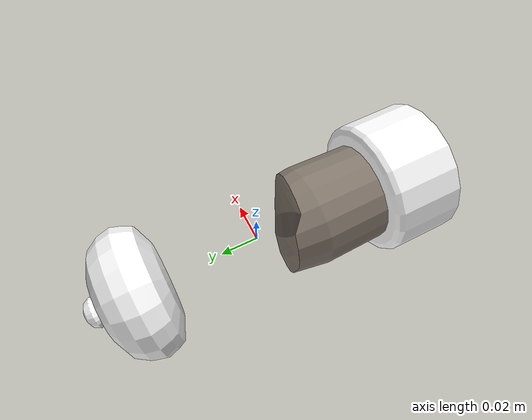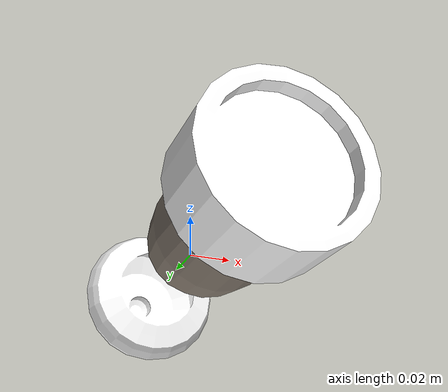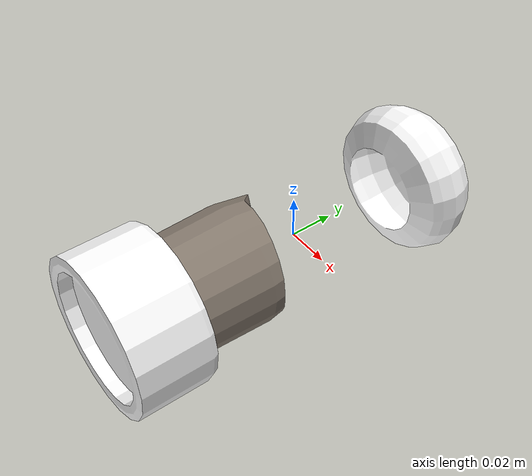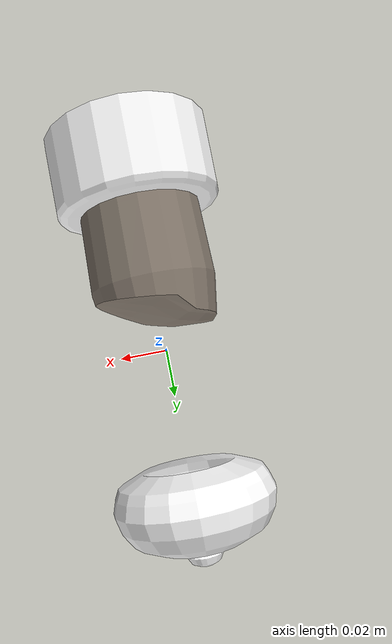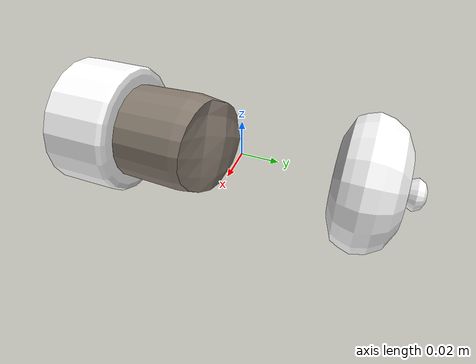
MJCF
<mujoco model="Pepper_Shaker_2">
  <default>
    <default class="visual">
      <geom group="2" type="mesh" contype="0" conaffinity="0"/>
    </default>
    <default class="collision">
      <geom group="3" type="mesh"/>
    </default>
  </default>
  <asset>
    <material name="Glass_Detailed_White_Mat" specular="0.5" shininess="0.5" rgba="1 1 1 0"/>
    <material name="Copper_AlbedoTransparency" specular="0.5" shininess="0.5" rgba="1 1 1 1.0"/>
    <material name="PepperNoise" specular="0.5" shininess="0.5" rgba="0.5220588 0.4775832 0.4299308 1.0"/>
    <mesh file="Pepper_Shaker_2_0.obj"/>
    <mesh file="Pepper_Shaker_2_1.obj"/>
    <mesh file="Pepper_Shaker_2_2.obj"/>
    <mesh file="Pepper_Shaker_2_collision_0.obj"/>
    <mesh file="Pepper_Shaker_2_collision_1.obj"/>
    <mesh file="Pepper_Shaker_2_collision_2.obj"/>
    <mesh file="Pepper_Shaker_2_collision_3.obj"/>
    <mesh file="Pepper_Shaker_2_collision_4.obj"/>
    <mesh file="Pepper_Shaker_2_collision_5.obj"/>
    <mesh file="Pepper_Shaker_2_collision_6.obj"/>
    <mesh file="Pepper_Shaker_2_collision_7.obj"/>
    <mesh file="Pepper_Shaker_2_collision_8.obj"/>
    <mesh file="Pepper_Shaker_2_collision_9.obj"/>
    <mesh file="Pepper_Shaker_2_collision_10.obj"/>
    <mesh file="Pepper_Shaker_2_collision_11.obj"/>
    <mesh file="Pepper_Shaker_2_collision_12.obj"/>
  </asset>
  <worldbody>
    <body name="Pepper_Shaker_2">
      <geom mesh="Pepper_Shaker_2_0" material="PepperNoise" class="visual"/>
      <geom mesh="Pepper_Shaker_2_1" material="Copper_AlbedoTransparency" class="visual"/>
      <geom mesh="Pepper_Shaker_2_2" material="Glass_Detailed_White_Mat" class="visual"/>
      <geom mesh="Pepper_Shaker_2_collision_0" rgba="0.44551615785766907 0.12021102991511246 0.06075302950239603 1" class="collision"/>
      <geom mesh="Pepper_Shaker_2_collision_1" rgba="0.9152170694422026 0.9900489281104883 0.32857366899183404 1" class="collision"/>
      <geom mesh="Pepper_Shaker_2_collision_2" rgba="0.815093684969311 0.9140500620752169 0.09935718670724991 1" class="collision"/>
      <geom mesh="Pepper_Shaker_2_collision_3" rgba="0.10380881824405885 0.7504676196377961 0.5609378890297569 1" class="collision"/>
      <geom mesh="Pepper_Shaker_2_collision_4" rgba="0.37693261341778506 0.04859083061448288 0.8213935593073852 1" class="collision"/>
      <geom mesh="Pepper_Shaker_2_collision_5" rgba="0.9987540762773217 0.12397787184123266 0.7732568150674655 1" class="collision"/>
      <geom mesh="Pepper_Shaker_2_collision_6" rgba="0.1944817445891286 0.4277045705197343 0.9468824290160641 1" class="collision"/>
      <geom mesh="Pepper_Shaker_2_collision_7" rgba="0.1076524107668928 0.4406518058026352 0.4181706550690165 1" class="collision"/>
      <geom mesh="Pepper_Shaker_2_collision_8" rgba="0.13698619269025036 0.7274345145428084 0.14533274595140722 1" class="collision"/>
      <geom mesh="Pepper_Shaker_2_collision_9" rgba="0.2692436516481621 0.31607296041740884 0.031176332288305186 1" class="collision"/>
      <geom mesh="Pepper_Shaker_2_collision_10" rgba="0.3994060518242427 0.41054486538417145 0.4484828381097262 1" class="collision"/>
      <geom mesh="Pepper_Shaker_2_collision_11" rgba="0.6737065720373482 0.9247292663666734 0.27863448756138476 1" class="collision"/>
      <geom mesh="Pepper_Shaker_2_collision_12" rgba="0.34402683286933655 0.3604217710627925 0.927005386554518 1" class="collision"/>
    </body>
  </worldbody>
</mujoco>
